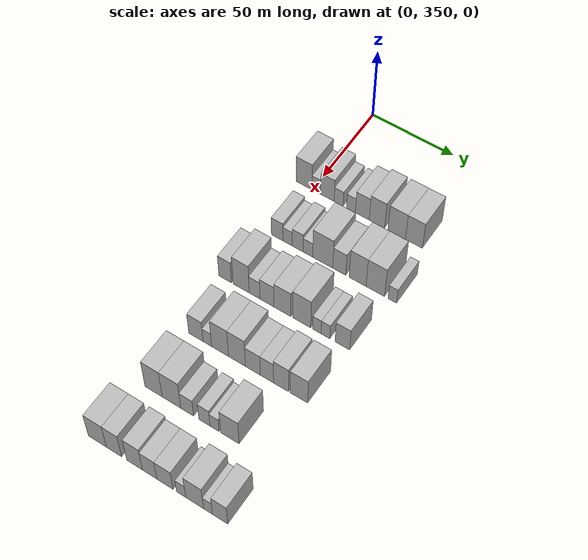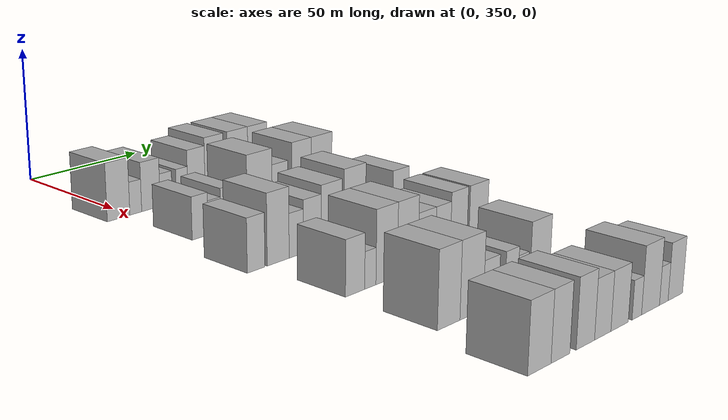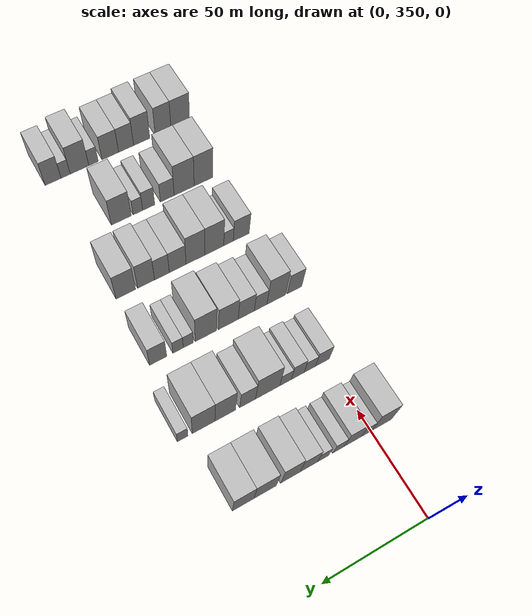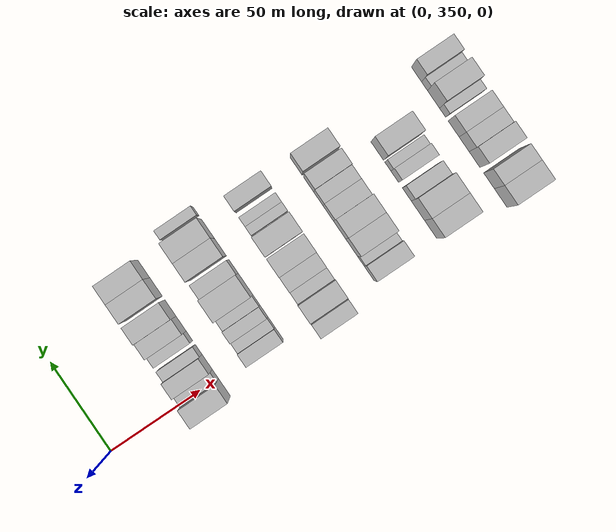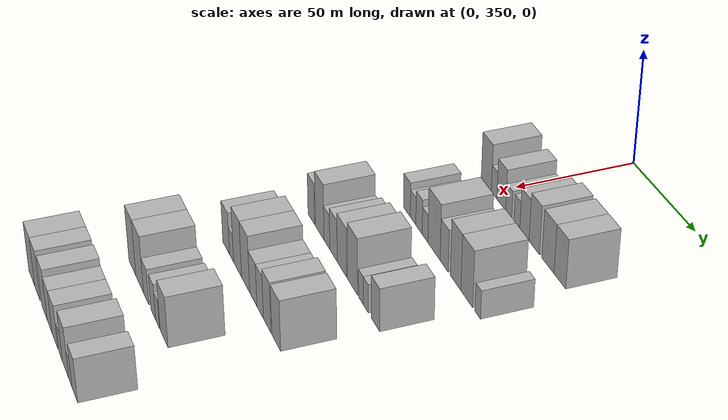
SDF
<sdf version="1.6">
 <world name="default">
  <model name="building_101">
   <static>1</static>
   <pose>50.0000 344.7666 0 0.000000 0.000000 0.000000</pose>
   <link name="link">
    <pose>0 0 10.50 0 0 0</pose>
    <collision name="collision"><geometry><box><size>20.0000 9.8090 21.0000</size></box></geometry></collision>
    <visual name="visual">
     <cast_shadows>0</cast_shadows>
     <geometry><box><size>20.0000 9.8090 21.0000</size></box></geometry>
     <material>
      <script>
       <uri>model://HANNAS_wall/materials/scripts</uri>
       <uri>model://HANNAS_wall/materials/textures</uri>
       <name>vrc/HANNAS_wall</name>
      </script>
     </material>
    </visual>
   </link>
  </model>
  <model name="building_102">
   <static>1</static>
   <pose>50.0000 352.2968 0 0.000000 0.000000 0.000000</pose>
   <link name="link">
    <pose>0 0 6.00 0 0 0</pose>
    <collision name="collision"><geometry><box><size>20.0000 5.2515 12.0000</size></box></geometry></collision>
    <visual name="visual">
     <cast_shadows>0</cast_shadows>
     <geometry><box><size>20.0000 5.2515 12.0000</size></box></geometry>
     <material>
      <script>
       <uri>model://HANNAS_wall/materials/scripts</uri>
       <uri>model://HANNAS_wall/materials/textures</uri>
       <name>vrc/HANNAS_wall</name>
      </script>
     </material>
    </visual>
   </link>
  </model>
  <model name="building_103">
   <static>1</static>
   <pose>50.0000 359.1207 0 0.000000 0.000000 0.000000</pose>
   <link name="link">
    <pose>0 0 9.00 0 0 0</pose>
    <collision name="collision"><geometry><box><size>20.0000 8.3962 18.0000</size></box></geometry></collision>
    <visual name="visual">
     <cast_shadows>0</cast_shadows>
     <geometry><box><size>20.0000 8.3962 18.0000</size></box></geometry>
     <material>
      <script>
       <uri>model://HANNAS_wall/materials/scripts</uri>
       <uri>model://HANNAS_wall/materials/textures</uri>
       <name>vrc/HANNAS_wall</name>
      </script>
     </material>
    </visual>
   </link>
  </model>
  <model name="building_104">
   <static>1</static>
   <pose>50.0000 366.1040 0 0.000000 0.000000 0.000000</pose>
   <link name="link">
    <pose>0 0 6.00 0 0 0</pose>
    <collision name="collision"><geometry><box><size>20.0000 5.5704 12.0000</size></box></geometry></collision>
    <visual name="visual">
     <cast_shadows>0</cast_shadows>
     <geometry><box><size>20.0000 5.5704 12.0000</size></box></geometry>
     <material>
      <script>
       <uri>model://HANNAS_wall/materials/scripts</uri>
       <uri>model://HANNAS_wall/materials/textures</uri>
       <name>vrc/HANNAS_wall</name>
      </script>
     </material>
    </visual>
   </link>
  </model>
  <model name="building_105">
   <static>1</static>
   <pose>50.0000 373.5674 0 0.000000 0.000000 0.000000</pose>
   <link name="link">
    <pose>0 0 6.00 0 0 0</pose>
    <collision name="collision"><geometry><box><size>20.0000 5.3565 12.0000</size></box></geometry></collision>
    <visual name="visual">
     <cast_shadows>0</cast_shadows>
     <geometry><box><size>20.0000 5.3565 12.0000</size></box></geometry>
     <material>
      <script>
       <uri>model://HANNAS_wall/materials/scripts</uri>
       <uri>model://HANNAS_wall/materials/textures</uri>
       <name>vrc/HANNAS_wall</name>
      </script>
     </material>
    </visual>
   </link>
  </model>
  <model name="building_106">
   <static>1</static>
   <pose>50.0000 380.4131 0 0.000000 0.000000 0.000000</pose>
   <link name="link">
    <pose>0 0 9.00 0 0 0</pose>
    <collision name="collision"><geometry><box><size>20.0000 8.3347 18.0000</size></box></geometry></collision>
    <visual name="visual">
     <cast_shadows>0</cast_shadows>
     <geometry><box><size>20.0000 8.3347 18.0000</size></box></geometry>
     <material>
      <script>
       <uri>model://HANNAS_wall/materials/scripts</uri>
       <uri>model://HANNAS_wall/materials/textures</uri>
       <name>vrc/HANNAS_wall</name>
      </script>
     </material>
    </visual>
   </link>
  </model>
  <model name="building_107">
   <static>1</static>
   <pose>50.0000 389.1814 0 0.000000 0.000000 0.000000</pose>
   <link name="link">
    <pose>0 0 10.50 0 0 0</pose>
    <collision name="collision"><geometry><box><size>20.0000 9.2020 21.0000</size></box></geometry></collision>
    <visual name="visual">
     <cast_shadows>0</cast_shadows>
     <geometry><box><size>20.0000 9.2020 21.0000</size></box></geometry>
     <material>
      <script>
       <uri>model://HANNAS_wall/materials/scripts</uri>
       <uri>model://HANNAS_wall/materials/textures</uri>
       <name>vrc/HANNAS_wall</name>
      </script>
     </material>
    </visual>
   </link>
  </model>
  <model name="building_108">
   <static>1</static>
   <pose>50.0000 400.9564 0 0.000000 0.000000 0.000000</pose>
   <link name="link">
    <pose>0 0 10.50 0 0 0</pose>
    <collision name="collision"><geometry><box><size>20.0000 10.3480 21.0000</size></box></geometry></collision>
    <visual name="visual">
     <cast_shadows>0</cast_shadows>
     <geometry><box><size>20.0000 10.3480 21.0000</size></box></geometry>
     <material>
      <script>
       <uri>model://HANNAS_wall/materials/scripts</uri>
       <uri>model://HANNAS_wall/materials/textures</uri>
       <name>vrc/HANNAS_wall</name>
      </script>
     </material>
    </visual>
   </link>
  </model>
  <model name="building_109">
   <static>1</static>
   <pose>50.0000 411.1029 0 0.000000 0.000000 0.000000</pose>
   <link name="link">
    <pose>0 0 10.50 0 0 0</pose>
    <collision name="collision"><geometry><box><size>20.0000 9.9449 21.0000</size></box></geometry></collision>
    <visual name="visual">
     <cast_shadows>0</cast_shadows>
     <geometry><box><size>20.0000 9.9449 21.0000</size></box></geometry>
     <material>
      <script>
       <uri>model://HANNAS_wall/materials/scripts</uri>
       <uri>model://HANNAS_wall/materials/textures</uri>
       <name>vrc/HANNAS_wall</name>
      </script>
     </material>
    </visual>
   </link>
  </model>
  <model name="building_227">
   <static>1</static>
   <pose>85.0000 351.4122 0 0.000000 0.000000 0.000000</pose>
   <link name="link">
    <pose>0 0 7.50 0 0 0</pose>
    <collision name="collision"><geometry><box><size>20.0000 7.0430 15.0000</size></box></geometry></collision>
    <visual name="visual">
     <cast_shadows>0</cast_shadows>
     <geometry><box><size>20.0000 7.0430 15.0000</size></box></geometry>
     <material>
      <script>
       <uri>model://HANNAS_wall/materials/scripts</uri>
       <uri>model://HANNAS_wall/materials/textures</uri>
       <name>vrc/HANNAS_wall</name>
      </script>
     </material>
    </visual>
   </link>
  </model>
  <model name="building_228">
   <static>1</static>
   <pose>85.0000 357.7696 0 0.000000 0.000000 0.000000</pose>
   <link name="link">
    <pose>0 0 6.00 0 0 0</pose>
    <collision name="collision"><geometry><box><size>20.0000 5.6718 12.0000</size></box></geometry></collision>
    <visual name="visual">
     <cast_shadows>0</cast_shadows>
     <geometry><box><size>20.0000 5.6718 12.0000</size></box></geometry>
     <material>
      <script>
       <uri>model://HANNAS_wall/materials/scripts</uri>
       <uri>model://HANNAS_wall/materials/textures</uri>
       <name>vrc/HANNAS_wall</name>
      </script>
     </material>
    </visual>
   </link>
  </model>
  <model name="building_229">
   <static>1</static>
   <pose>85.0000 363.8399 0 0.000000 0.000000 0.000000</pose>
   <link name="link">
    <pose>0 0 7.50 0 0 0</pose>
    <collision name="collision"><geometry><box><size>20.0000 6.4688 15.0000</size></box></geometry></collision>
    <visual name="visual">
     <cast_shadows>0</cast_shadows>
     <geometry><box><size>20.0000 6.4688 15.0000</size></box></geometry>
     <material>
      <script>
       <uri>model://HANNAS_wall/materials/scripts</uri>
       <uri>model://HANNAS_wall/materials/textures</uri>
       <name>vrc/HANNAS_wall</name>
      </script>
     </material>
    </visual>
   </link>
  </model>
  <model name="building_230">
   <static>1</static>
   <pose>85.0000 369.9370 0 0.000000 0.000000 0.000000</pose>
   <link name="link">
    <pose>0 0 6.00 0 0 0</pose>
    <collision name="collision"><geometry><box><size>20.0000 5.7253 12.0000</size></box></geometry></collision>
    <visual name="visual">
     <cast_shadows>0</cast_shadows>
     <geometry><box><size>20.0000 5.7253 12.0000</size></box></geometry>
     <material>
      <script>
       <uri>model://HANNAS_wall/materials/scripts</uri>
       <uri>model://HANNAS_wall/materials/textures</uri>
       <name>vrc/HANNAS_wall</name>
      </script>
     </material>
    </visual>
   </link>
  </model>
  <model name="building_231">
   <static>1</static>
   <pose>85.0000 378.7797 0 0.000000 0.000000 0.000000</pose>
   <link name="link">
    <pose>0 0 12.00 0 0 0</pose>
    <collision name="collision"><geometry><box><size>20.0000 11.9601 24.0000</size></box></geometry></collision>
    <visual name="visual">
     <cast_shadows>0</cast_shadows>
     <geometry><box><size>20.0000 11.9601 24.0000</size></box></geometry>
     <material>
      <script>
       <uri>model://HANNAS_wall/materials/scripts</uri>
       <uri>model://HANNAS_wall/materials/textures</uri>
       <name>vrc/HANNAS_wall</name>
      </script>
     </material>
    </visual>
   </link>
  </model>
  <model name="building_232">
   <static>1</static>
   <pose>85.0000 388.5978 0 0.000000 0.000000 0.000000</pose>
   <link name="link">
    <pose>0 0 9.00 0 0 0</pose>
    <collision name="collision"><geometry><box><size>20.0000 7.6760 18.0000</size></box></geometry></collision>
    <visual name="visual">
     <cast_shadows>0</cast_shadows>
     <geometry><box><size>20.0000 7.6760 18.0000</size></box></geometry>
     <material>
      <script>
       <uri>model://HANNAS_wall/materials/scripts</uri>
       <uri>model://HANNAS_wall/materials/textures</uri>
       <name>vrc/HANNAS_wall</name>
      </script>
     </material>
    </visual>
   </link>
  </model>
  <model name="building_233">
   <static>1</static>
   <pose>85.0000 399.3626 0 0.000000 0.000000 0.000000</pose>
   <link name="link">
    <pose>0 0 12.00 0 0 0</pose>
    <collision name="collision"><geometry><box><size>20.0000 9.8536 24.0000</size></box></geometry></collision>
    <visual name="visual">
     <cast_shadows>0</cast_shadows>
     <geometry><box><size>20.0000 9.8536 24.0000</size></box></geometry>
     <material>
      <script>
       <uri>model://HANNAS_wall/materials/scripts</uri>
       <uri>model://HANNAS_wall/materials/textures</uri>
       <name>vrc/HANNAS_wall</name>
      </script>
     </material>
    </visual>
   </link>
  </model>
  <model name="building_234">
   <static>1</static>
   <pose>85.0000 409.6430 0 0.000000 0.000000 0.000000</pose>
   <link name="link">
    <pose>0 0 12.00 0 0 0</pose>
    <collision name="collision"><geometry><box><size>20.0000 10.7074 24.0000</size></box></geometry></collision>
    <visual name="visual">
     <cast_shadows>0</cast_shadows>
     <geometry><box><size>20.0000 10.7074 24.0000</size></box></geometry>
     <material>
      <script>
       <uri>model://HANNAS_wall/materials/scripts</uri>
       <uri>model://HANNAS_wall/materials/textures</uri>
       <name>vrc/HANNAS_wall</name>
      </script>
     </material>
    </visual>
   </link>
  </model>
  <model name="building_235">
   <static>1</static>
   <pose>85.0000 419.4734 0 0.000000 0.000000 0.000000</pose>
   <link name="link">
    <pose>0 0 6.00 0 0 0</pose>
    <collision name="collision"><geometry><box><size>20.0000 4.9534 12.0000</size></box></geometry></collision>
    <visual name="visual">
     <cast_shadows>0</cast_shadows>
     <geometry><box><size>20.0000 4.9534 12.0000</size></box></geometry>
     <material>
      <script>
       <uri>model://HANNAS_wall/materials/scripts</uri>
       <uri>model://HANNAS_wall/materials/textures</uri>
       <name>vrc/HANNAS_wall</name>
      </script>
     </material>
    </visual>
   </link>
  </model>
  <model name="building_355">
   <static>1</static>
   <pose>120.0000 343.6664 0 0.000000 0.000000 0.000000</pose>
   <link name="link">
    <pose>0 0 9.00 0 0 0</pose>
    <collision name="collision"><geometry><box><size>20.0000 7.5448 18.0000</size></box></geometry></collision>
    <visual name="visual">
     <cast_shadows>0</cast_shadows>
     <geometry><box><size>20.0000 7.5448 18.0000</size></box></geometry>
     <material>
      <script>
       <uri>model://HANNAS_wall/materials/scripts</uri>
       <uri>model://HANNAS_wall/materials/textures</uri>
       <name>vrc/HANNAS_wall</name>
      </script>
     </material>
    </visual>
   </link>
  </model>
  <model name="building_356">
   <static>1</static>
   <pose>120.0000 353.2873 0 0.000000 0.000000 0.000000</pose>
   <link name="link">
    <pose>0 0 12.00 0 0 0</pose>
    <collision name="collision"><geometry><box><size>20.0000 9.6971 24.0000</size></box></geometry></collision>
    <visual name="visual">
     <cast_shadows>0</cast_shadows>
     <geometry><box><size>20.0000 9.6971 24.0000</size></box></geometry>
     <material>
      <script>
       <uri>model://HANNAS_wall/materials/scripts</uri>
       <uri>model://HANNAS_wall/materials/textures</uri>
       <name>vrc/HANNAS_wall</name>
      </script>
     </material>
    </visual>
   </link>
  </model>
  <model name="building_357">
   <static>1</static>
   <pose>120.0000 361.3659 0 0.000000 0.000000 0.000000</pose>
   <link name="link">
    <pose>0 0 7.50 0 0 0</pose>
    <collision name="collision"><geometry><box><size>20.0000 6.4602 15.0000</size></box></geometry></collision>
    <visual name="visual">
     <cast_shadows>0</cast_shadows>
     <geometry><box><size>20.0000 6.4602 15.0000</size></box></geometry>
     <material>
      <script>
       <uri>model://HANNAS_wall/materials/scripts</uri>
       <uri>model://HANNAS_wall/materials/textures</uri>
       <name>vrc/HANNAS_wall</name>
      </script>
     </material>
    </visual>
   </link>
  </model>
  <model name="building_358">
   <static>1</static>
   <pose>120.0000 368.7151 0 0.000000 0.000000 0.000000</pose>
   <link name="link">
    <pose>0 0 9.00 0 0 0</pose>
    <collision name="collision"><geometry><box><size>20.0000 8.2382 18.0000</size></box></geometry></collision>
    <visual name="visual">
     <cast_shadows>0</cast_shadows>
     <geometry><box><size>20.0000 8.2382 18.0000</size></box></geometry>
     <material>
      <script>
       <uri>model://HANNAS_wall/materials/scripts</uri>
       <uri>model://HANNAS_wall/materials/textures</uri>
       <name>vrc/HANNAS_wall</name>
      </script>
     </material>
    </visual>
   </link>
  </model>
  <model name="building_359">
   <static>1</static>
   <pose>120.0000 377.8166 0 0.000000 0.000000 0.000000</pose>
   <link name="link">
    <pose>0 0 10.50 0 0 0</pose>
    <collision name="collision"><geometry><box><size>20.0000 9.9648 21.0000</size></box></geometry></collision>
    <visual name="visual">
     <cast_shadows>0</cast_shadows>
     <geometry><box><size>20.0000 9.9648 21.0000</size></box></geometry>
     <material>
      <script>
       <uri>model://HANNAS_wall/materials/scripts</uri>
       <uri>model://HANNAS_wall/materials/textures</uri>
       <name>vrc/HANNAS_wall</name>
      </script>
     </material>
    </visual>
   </link>
  </model>
  <model name="building_360">
   <static>1</static>
   <pose>120.0000 389.0884 0 0.000000 0.000000 0.000000</pose>
   <link name="link">
    <pose>0 0 12.00 0 0 0</pose>
    <collision name="collision"><geometry><box><size>20.0000 10.5787 24.0000</size></box></geometry></collision>
    <visual name="visual">
     <cast_shadows>0</cast_shadows>
     <geometry><box><size>20.0000 10.5787 24.0000</size></box></geometry>
     <material>
      <script>
       <uri>model://HANNAS_wall/materials/scripts</uri>
       <uri>model://HANNAS_wall/materials/textures</uri>
       <name>vrc/HANNAS_wall</name>
      </script>
     </material>
    </visual>
   </link>
  </model>
  <model name="building_361">
   <static>1</static>
   <pose>120.0000 397.8332 0 0.000000 0.000000 0.000000</pose>
   <link name="link">
    <pose>0 0 6.00 0 0 0</pose>
    <collision name="collision"><geometry><box><size>20.0000 4.9109 12.0000</size></box></geometry></collision>
    <visual name="visual">
     <cast_shadows>0</cast_shadows>
     <geometry><box><size>20.0000 4.9109 12.0000</size></box></geometry>
     <material>
      <script>
       <uri>model://HANNAS_wall/materials/scripts</uri>
       <uri>model://HANNAS_wall/materials/textures</uri>
       <name>vrc/HANNAS_wall</name>
      </script>
     </material>
    </visual>
   </link>
  </model>
  <model name="building_362">
   <static>1</static>
   <pose>120.0000 402.8285 0 0.000000 0.000000 0.000000</pose>
   <link name="link">
    <pose>0 0 6.00 0 0 0</pose>
    <collision name="collision"><geometry><box><size>20.0000 5.0797 12.0000</size></box></geometry></collision>
    <visual name="visual">
     <cast_shadows>0</cast_shadows>
     <geometry><box><size>20.0000 5.0797 12.0000</size></box></geometry>
     <material>
      <script>
       <uri>model://HANNAS_wall/materials/scripts</uri>
       <uri>model://HANNAS_wall/materials/textures</uri>
       <name>vrc/HANNAS_wall</name>
      </script>
     </material>
    </visual>
   </link>
  </model>
  <model name="building_363">
   <static>1</static>
   <pose>120.0000 412.5201 0 0.000000 0.000000 0.000000</pose>
   <link name="link">
    <pose>0 0 9.00 0 0 0</pose>
    <collision name="collision"><geometry><box><size>20.0000 8.3034 18.0000</size></box></geometry></collision>
    <visual name="visual">
     <cast_shadows>0</cast_shadows>
     <geometry><box><size>20.0000 8.3034 18.0000</size></box></geometry>
     <material>
      <script>
       <uri>model://HANNAS_wall/materials/scripts</uri>
       <uri>model://HANNAS_wall/materials/textures</uri>
       <name>vrc/HANNAS_wall</name>
      </script>
     </material>
    </visual>
   </link>
  </model>
  <model name="building_481">
   <static>1</static>
   <pose>155.0000 350.9068 0 0.000000 0.000000 0.000000</pose>
   <link name="link">
    <pose>0 0 9.00 0 0 0</pose>
    <collision name="collision"><geometry><box><size>20.0000 8.4774 18.0000</size></box></geometry></collision>
    <visual name="visual">
     <cast_shadows>0</cast_shadows>
     <geometry><box><size>20.0000 8.4774 18.0000</size></box></geometry>
     <material>
      <script>
       <uri>model://HANNAS_wall/materials/scripts</uri>
       <uri>model://HANNAS_wall/materials/textures</uri>
       <name>vrc/HANNAS_wall</name>
      </script>
     </material>
    </visual>
   </link>
  </model>
  <model name="building_482">
   <static>1</static>
   <pose>155.0000 357.6869 0 0.000000 0.000000 0.000000</pose>
   <link name="link">
    <pose>0 0 6.00 0 0 0</pose>
    <collision name="collision"><geometry><box><size>20.0000 5.0828 12.0000</size></box></geometry></collision>
    <visual name="visual">
     <cast_shadows>0</cast_shadows>
     <geometry><box><size>20.0000 5.0828 12.0000</size></box></geometry>
     <material>
      <script>
       <uri>model://HANNAS_wall/materials/scripts</uri>
       <uri>model://HANNAS_wall/materials/textures</uri>
       <name>vrc/HANNAS_wall</name>
      </script>
     </material>
    </visual>
   </link>
  </model>
  <model name="building_483">
   <static>1</static>
   <pose>155.0000 365.1607 0 0.000000 0.000000 0.000000</pose>
   <link name="link">
    <pose>0 0 12.00 0 0 0</pose>
    <collision name="collision"><geometry><box><size>20.0000 9.8648 24.0000</size></box></geometry></collision>
    <visual name="visual">
     <cast_shadows>0</cast_shadows>
     <geometry><box><size>20.0000 9.8648 24.0000</size></box></geometry>
     <material>
      <script>
       <uri>model://HANNAS_wall/materials/scripts</uri>
       <uri>model://HANNAS_wall/materials/textures</uri>
       <name>vrc/HANNAS_wall</name>
      </script>
     </material>
    </visual>
   </link>
  </model>
  <model name="building_484">
   <static>1</static>
   <pose>155.0000 375.0184 0 0.000000 0.000000 0.000000</pose>
   <link name="link">
    <pose>0 0 12.00 0 0 0</pose>
    <collision name="collision"><geometry><box><size>20.0000 9.8507 24.0000</size></box></geometry></collision>
    <visual name="visual">
     <cast_shadows>0</cast_shadows>
     <geometry><box><size>20.0000 9.8507 24.0000</size></box></geometry>
     <material>
      <script>
       <uri>model://HANNAS_wall/materials/scripts</uri>
       <uri>model://HANNAS_wall/materials/textures</uri>
       <name>vrc/HANNAS_wall</name>
      </script>
     </material>
    </visual>
   </link>
  </model>
  <model name="building_485">
   <static>1</static>
   <pose>155.0000 384.2531 0 0.000000 0.000000 0.000000</pose>
   <link name="link">
    <pose>0 0 9.00 0 0 0</pose>
    <collision name="collision"><geometry><box><size>20.0000 8.6187 18.0000</size></box></geometry></collision>
    <visual name="visual">
     <cast_shadows>0</cast_shadows>
     <geometry><box><size>20.0000 8.6187 18.0000</size></box></geometry>
     <material>
      <script>
       <uri>model://HANNAS_wall/materials/scripts</uri>
       <uri>model://HANNAS_wall/materials/textures</uri>
       <name>vrc/HANNAS_wall</name>
      </script>
     </material>
    </visual>
   </link>
  </model>
  <model name="building_486">
   <static>1</static>
   <pose>155.0000 392.3099 0 0.000000 0.000000 0.000000</pose>
   <link name="link">
    <pose>0 0 9.00 0 0 0</pose>
    <collision name="collision"><geometry><box><size>20.0000 7.4948 18.0000</size></box></geometry></collision>
    <visual name="visual">
     <cast_shadows>0</cast_shadows>
     <geometry><box><size>20.0000 7.4948 18.0000</size></box></geometry>
     <material>
      <script>
       <uri>model://HANNAS_wall/materials/scripts</uri>
       <uri>model://HANNAS_wall/materials/textures</uri>
       <name>vrc/HANNAS_wall</name>
      </script>
     </material>
    </visual>
   </link>
  </model>
  <model name="building_487">
   <static>1</static>
   <pose>155.0000 400.3291 0 0.000000 0.000000 0.000000</pose>
   <link name="link">
    <pose>0 0 10.50 0 0 0</pose>
    <collision name="collision"><geometry><box><size>20.0000 8.5435 21.0000</size></box></geometry></collision>
    <visual name="visual">
     <cast_shadows>0</cast_shadows>
     <geometry><box><size>20.0000 8.5435 21.0000</size></box></geometry>
     <material>
      <script>
       <uri>model://HANNAS_wall/materials/scripts</uri>
       <uri>model://HANNAS_wall/materials/textures</uri>
       <name>vrc/HANNAS_wall</name>
      </script>
     </material>
    </visual>
   </link>
  </model>
  <model name="building_488">
   <static>1</static>
   <pose>155.0000 410.4863 0 0.000000 0.000000 0.000000</pose>
   <link name="link">
    <pose>0 0 10.50 0 0 0</pose>
    <collision name="collision"><geometry><box><size>20.0000 9.7709 21.0000</size></box></geometry></collision>
    <visual name="visual">
     <cast_shadows>0</cast_shadows>
     <geometry><box><size>20.0000 9.7709 21.0000</size></box></geometry>
     <material>
      <script>
       <uri>model://HANNAS_wall/materials/scripts</uri>
       <uri>model://HANNAS_wall/materials/textures</uri>
       <name>vrc/HANNAS_wall</name>
      </script>
     </material>
    </visual>
   </link>
  </model>
  <model name="building_599">
   <static>1</static>
   <pose>190.0000 351.4605 0 0.000000 0.000000 0.000000</pose>
   <link name="link">
    <pose>0 0 12.00 0 0 0</pose>
    <collision name="collision"><geometry><box><size>20.0000 10.1053 24.0000</size></box></geometry></collision>
    <visual name="visual">
     <cast_shadows>0</cast_shadows>
     <geometry><box><size>20.0000 10.1053 24.0000</size></box></geometry>
     <material>
      <script>
       <uri>model://HANNAS_wall/materials/scripts</uri>
       <uri>model://HANNAS_wall/materials/textures</uri>
       <name>vrc/HANNAS_wall</name>
      </script>
     </material>
    </visual>
   </link>
  </model>
  <model name="building_600">
   <static>1</static>
   <pose>190.0000 361.9366 0 0.000000 0.000000 0.000000</pose>
   <link name="link">
    <pose>0 0 12.00 0 0 0</pose>
    <collision name="collision"><geometry><box><size>20.0000 10.8470 24.0000</size></box></geometry></collision>
    <visual name="visual">
     <cast_shadows>0</cast_shadows>
     <geometry><box><size>20.0000 10.8470 24.0000</size></box></geometry>
     <material>
      <script>
       <uri>model://HANNAS_wall/materials/scripts</uri>
       <uri>model://HANNAS_wall/materials/textures</uri>
       <name>vrc/HANNAS_wall</name>
      </script>
     </material>
    </visual>
   </link>
  </model>
  <model name="building_601">
   <static>1</static>
   <pose>190.0000 371.0299 0 0.000000 0.000000 0.000000</pose>
   <link name="link">
    <pose>0 0 7.50 0 0 0</pose>
    <collision name="collision"><geometry><box><size>20.0000 7.3396 15.0000</size></box></geometry></collision>
    <visual name="visual">
     <cast_shadows>0</cast_shadows>
     <geometry><box><size>20.0000 7.3396 15.0000</size></box></geometry>
     <material>
      <script>
       <uri>model://HANNAS_wall/materials/scripts</uri>
       <uri>model://HANNAS_wall/materials/textures</uri>
       <name>vrc/HANNAS_wall</name>
      </script>
     </material>
    </visual>
   </link>
  </model>
  <model name="building_602">
   <static>1</static>
   <pose>190.0000 380.8867 0 0.000000 0.000000 0.000000</pose>
   <link name="link">
    <pose>0 0 7.50 0 0 0</pose>
    <collision name="collision"><geometry><box><size>20.0000 6.3740 15.0000</size></box></geometry></collision>
    <visual name="visual">
     <cast_shadows>0</cast_shadows>
     <geometry><box><size>20.0000 6.3740 15.0000</size></box></geometry>
     <material>
      <script>
       <uri>model://HANNAS_wall/materials/scripts</uri>
       <uri>model://HANNAS_wall/materials/textures</uri>
       <name>vrc/HANNAS_wall</name>
      </script>
     </material>
    </visual>
   </link>
  </model>
  <model name="building_603">
   <static>1</static>
   <pose>190.0000 386.5988 0 0.000000 0.000000 0.000000</pose>
   <link name="link">
    <pose>0 0 6.00 0 0 0</pose>
    <collision name="collision"><geometry><box><size>20.0000 5.0500 12.0000</size></box></geometry></collision>
    <visual name="visual">
     <cast_shadows>0</cast_shadows>
     <geometry><box><size>20.0000 5.0500 12.0000</size></box></geometry>
     <material>
      <script>
       <uri>model://HANNAS_wall/materials/scripts</uri>
       <uri>model://HANNAS_wall/materials/textures</uri>
       <name>vrc/HANNAS_wall</name>
      </script>
     </material>
    </visual>
   </link>
  </model>
  <model name="building_604">
   <static>1</static>
   <pose>190.0000 395.2905 0 0.000000 0.000000 0.000000</pose>
   <link name="link">
    <pose>0 0 10.50 0 0 0</pose>
    <collision name="collision"><geometry><box><size>20.0000 10.3335 21.0000</size></box></geometry></collision>
    <visual name="visual">
     <cast_shadows>0</cast_shadows>
     <geometry><box><size>20.0000 10.3335 21.0000</size></box></geometry>
     <material>
      <script>
       <uri>model://HANNAS_wall/materials/scripts</uri>
       <uri>model://HANNAS_wall/materials/textures</uri>
       <name>vrc/HANNAS_wall</name>
      </script>
     </material>
    </visual>
   </link>
  </model>
  <model name="building_713">
   <static>1</static>
   <pose>225.0000 345.1927 0 0.000000 0.000000 0.000000</pose>
   <link name="link">
    <pose>0 0 10.50 0 0 0</pose>
    <collision name="collision"><geometry><box><size>20.0000 10.4985 21.0000</size></box></geometry></collision>
    <visual name="visual">
     <cast_shadows>0</cast_shadows>
     <geometry><box><size>20.0000 10.4985 21.0000</size></box></geometry>
     <material>
      <script>
       <uri>model://HANNAS_wall/materials/scripts</uri>
       <uri>model://HANNAS_wall/materials/textures</uri>
       <name>vrc/HANNAS_wall</name>
      </script>
     </material>
    </visual>
   </link>
  </model>
  <model name="building_714">
   <static>1</static>
   <pose>225.0000 354.8260 0 0.000000 0.000000 0.000000</pose>
   <link name="link">
    <pose>0 0 10.50 0 0 0</pose>
    <collision name="collision"><geometry><box><size>20.0000 8.7681 21.0000</size></box></geometry></collision>
    <visual name="visual">
     <cast_shadows>0</cast_shadows>
     <geometry><box><size>20.0000 8.7681 21.0000</size></box></geometry>
     <material>
      <script>
       <uri>model://HANNAS_wall/materials/scripts</uri>
       <uri>model://HANNAS_wall/materials/textures</uri>
       <name>vrc/HANNAS_wall</name>
      </script>
     </material>
    </visual>
   </link>
  </model>
  <model name="building_715">
   <static>1</static>
   <pose>225.0000 366.6663 0 0.000000 0.000000 0.000000</pose>
   <link name="link">
    <pose>0 0 10.50 0 0 0</pose>
    <collision name="collision"><geometry><box><size>20.0000 8.9124 21.0000</size></box></geometry></collision>
    <visual name="visual">
     <cast_shadows>0</cast_shadows>
     <geometry><box><size>20.0000 8.9124 21.0000</size></box></geometry>
     <material>
      <script>
       <uri>model://HANNAS_wall/materials/scripts</uri>
       <uri>model://HANNAS_wall/materials/textures</uri>
       <name>vrc/HANNAS_wall</name>
      </script>
     </material>
    </visual>
   </link>
  </model>
  <model name="building_716">
   <static>1</static>
   <pose>225.0000 375.2316 0 0.000000 0.000000 0.000000</pose>
   <link name="link">
    <pose>0 0 9.00 0 0 0</pose>
    <collision name="collision"><geometry><box><size>20.0000 8.2183 18.0000</size></box></geometry></collision>
    <visual name="visual">
     <cast_shadows>0</cast_shadows>
     <geometry><box><size>20.0000 8.2183 18.0000</size></box></geometry>
     <material>
      <script>
       <uri>model://HANNAS_wall/materials/scripts</uri>
       <uri>model://HANNAS_wall/materials/textures</uri>
       <name>vrc/HANNAS_wall</name>
      </script>
     </material>
    </visual>
   </link>
  </model>
  <model name="building_717">
   <static>1</static>
   <pose>225.0000 383.8407 0 0.000000 0.000000 0.000000</pose>
   <link name="link">
    <pose>0 0 9.00 0 0 0</pose>
    <collision name="collision"><geometry><box><size>20.0000 8.9999 18.0000</size></box></geometry></collision>
    <visual name="visual">
     <cast_shadows>0</cast_shadows>
     <geometry><box><size>20.0000 8.9999 18.0000</size></box></geometry>
     <material>
      <script>
       <uri>model://HANNAS_wall/materials/scripts</uri>
       <uri>model://HANNAS_wall/materials/textures</uri>
       <name>vrc/HANNAS_wall</name>
      </script>
     </material>
    </visual>
   </link>
  </model>
  <model name="building_718">
   <static>1</static>
   <pose>225.0000 392.8771 0 0.000000 0.000000 0.000000</pose>
   <link name="link">
    <pose>0 0 6.00 0 0 0</pose>
    <collision name="collision"><geometry><box><size>20.0000 5.0730 12.0000</size></box></geometry></collision>
    <visual name="visual">
     <cast_shadows>0</cast_shadows>
     <geometry><box><size>20.0000 5.0730 12.0000</size></box></geometry>
     <material>
      <script>
       <uri>model://HANNAS_wall/materials/scripts</uri>
       <uri>model://HANNAS_wall/materials/textures</uri>
       <name>vrc/HANNAS_wall</name>
      </script>
     </material>
    </visual>
   </link>
  </model>
  <model name="building_719">
   <static>1</static>
   <pose>225.0000 400.3456 0 0.000000 0.000000 0.000000</pose>
   <link name="link">
    <pose>0 0 10.50 0 0 0</pose>
    <collision name="collision"><geometry><box><size>20.0000 9.8639 21.0000</size></box></geometry></collision>
    <visual name="visual">
     <cast_shadows>0</cast_shadows>
     <geometry><box><size>20.0000 9.8639 21.0000</size></box></geometry>
     <material>
      <script>
       <uri>model://HANNAS_wall/materials/scripts</uri>
       <uri>model://HANNAS_wall/materials/textures</uri>
       <name>vrc/HANNAS_wall</name>
      </script>
     </material>
    </visual>
   </link>
  </model>
  <model name="building_720">
   <static>1</static>
   <pose>225.0000 407.6994 0 0.000000 0.000000 0.000000</pose>
   <link name="link">
    <pose>0 0 6.00 0 0 0</pose>
    <collision name="collision"><geometry><box><size>20.0000 4.8438 12.0000</size></box></geometry></collision>
    <visual name="visual">
     <cast_shadows>0</cast_shadows>
     <geometry><box><size>20.0000 4.8438 12.0000</size></box></geometry>
     <material>
      <script>
       <uri>model://HANNAS_wall/materials/scripts</uri>
       <uri>model://HANNAS_wall/materials/textures</uri>
       <name>vrc/HANNAS_wall</name>
      </script>
     </material>
    </visual>
   </link>
  </model>
  <model name="building_721">
   <static>1</static>
   <pose>225.0000 414.3054 0 0.000000 0.000000 0.000000</pose>
   <link name="link">
    <pose>0 0 9.00 0 0 0</pose>
    <collision name="collision"><geometry><box><size>20.0000 8.3682 18.0000</size></box></geometry></collision>
    <visual name="visual">
     <cast_shadows>0</cast_shadows>
     <geometry><box><size>20.0000 8.3682 18.0000</size></box></geometry>
     <material>
      <script>
       <uri>model://HANNAS_wall/materials/scripts</uri>
       <uri>model://HANNAS_wall/materials/textures</uri>
       <name>vrc/HANNAS_wall</name>
      </script>
     </material>
    </visual>
   </link>
  </model>
 </world>
</sdf>
